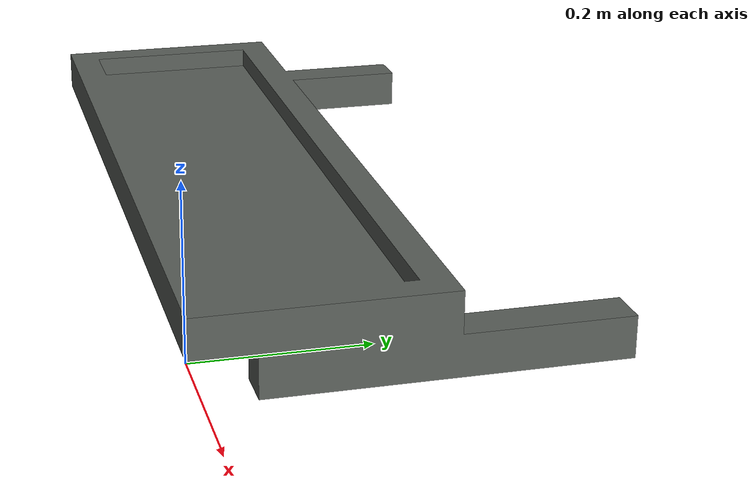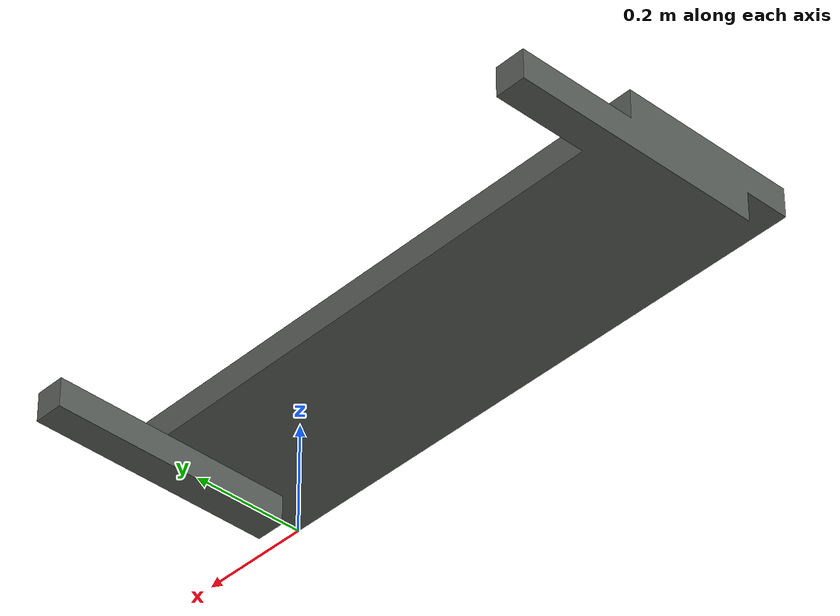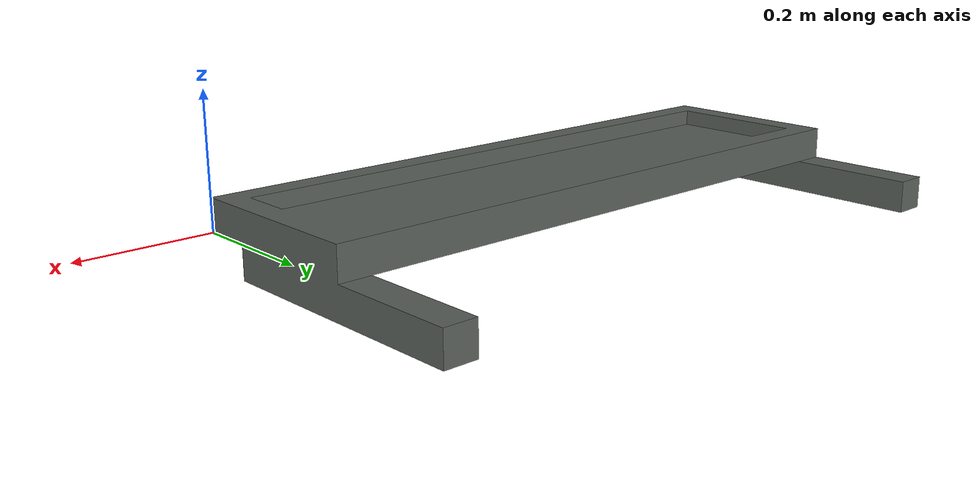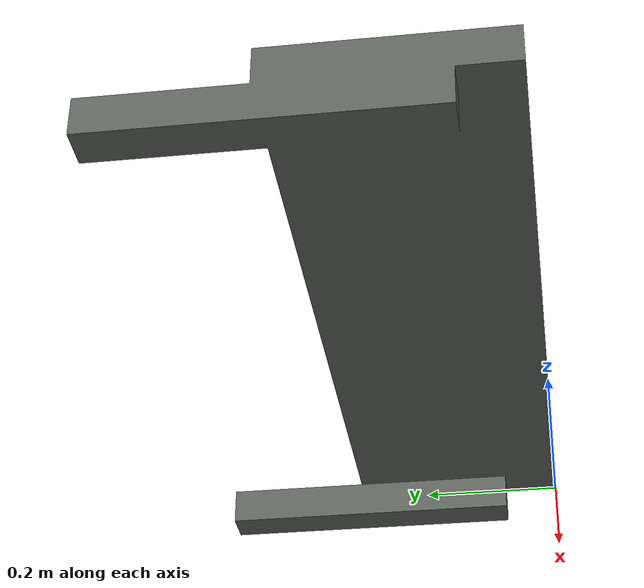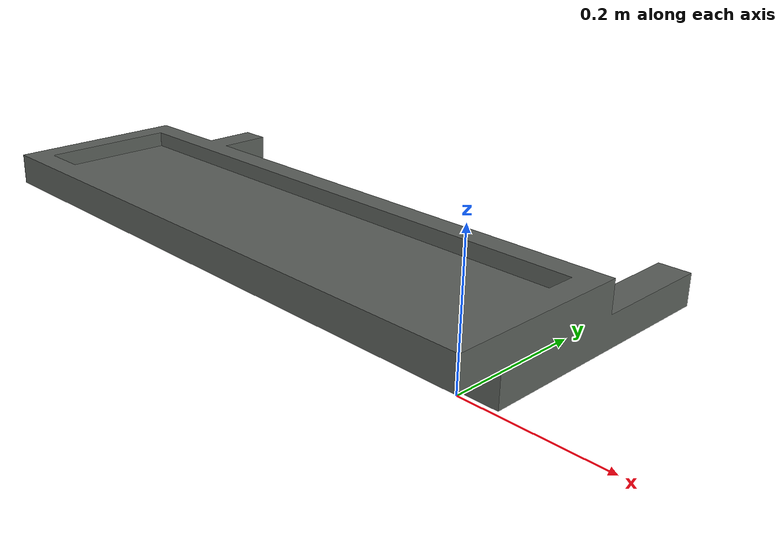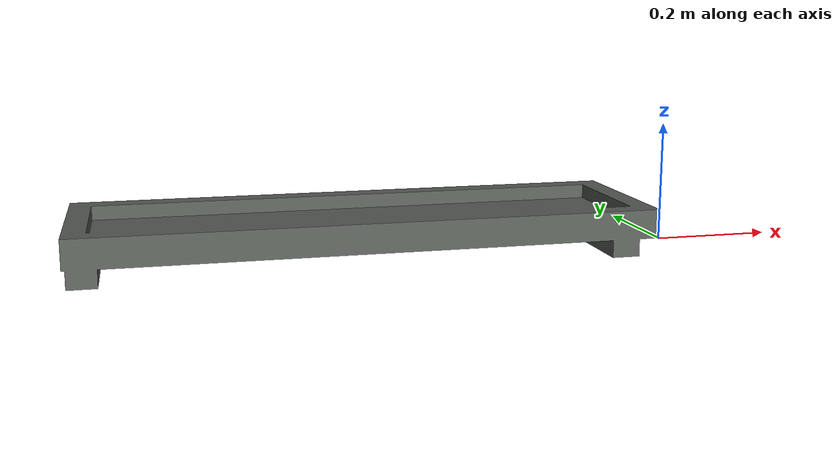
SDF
<?xml version='1.0'?>
<sdf version='1.6'>
  <model name='deposition_bin'>
    <link name='link_0'>
      <pose frame=''>-0 0 0 0 -0 0</pose>
      <gravity>0</gravity>
      <self_collide>0</self_collide>
      <kinematic>0</kinematic>
      <enable_wind>0</enable_wind>
      <visual name='visual'>
        <pose frame=''>0 0 0 0 -0 0</pose>
        <geometry>
          <mesh>
            <uri>model://deposition_bin/meshes/deposition_bin.dae</uri>
            <scale>1 1 1</scale>
          </mesh>
        </geometry>
        <material>
          <lighting>1</lighting>
          <ambient> .75 .75 .75 1 </ambient>
          <diffuse>0.36 0.38 0.36 1</diffuse>
          <specular>0.01 0.01 0.01 1</specular>
          <emissive>0 0 0 1</emissive>
        </material>
        <transparency>0</transparency>
        <cast_shadows>1</cast_shadows>
      </visual>
      <collision name='collision'>
        <laser_retro>0</laser_retro>
        <max_contacts>10</max_contacts>
        <pose frame=''>0 0 0 0 -0 0</pose>
        <geometry>
          <mesh>
            <uri>model://deposition_bin/meshes/deposition_bin.dae</uri>
            <scale>1 1 1</scale>
          </mesh>
        </geometry>
      </collision>
    </link>
    <static>1</static>
    <allow_auto_disable>1</allow_auto_disable>
  </model>
</sdf>
